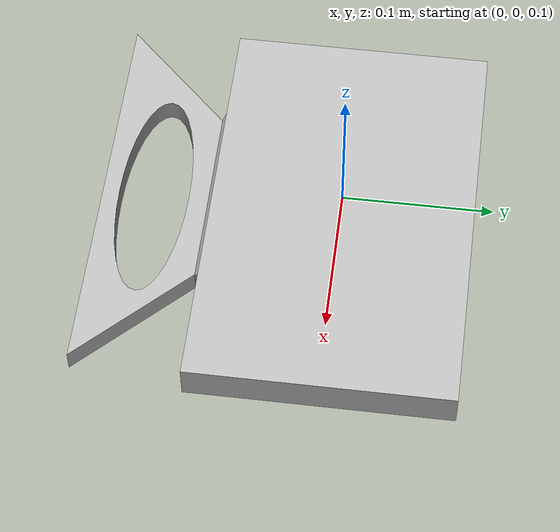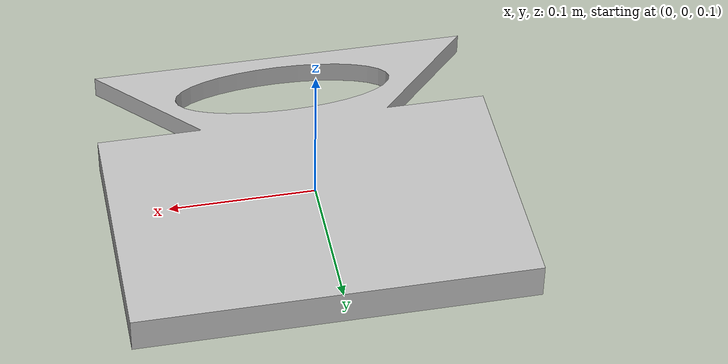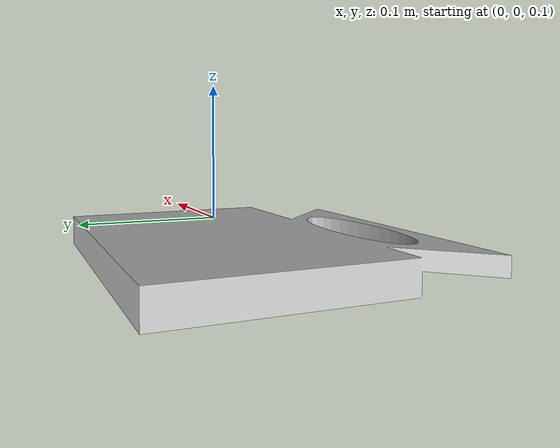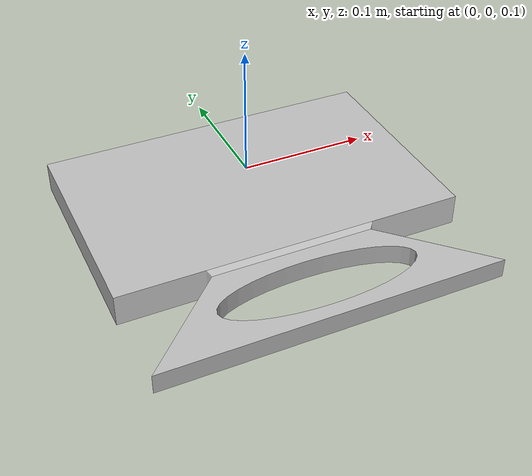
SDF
<?xml version="1.0" ?>
<sdf version="1.5">
  <model name="aruco_block_long">
    <static>false</static>
    <link name="link">
      <inertial>
        <mass>0.049</mass>
        <inertia>
          <ixx>1.45e-4</ixx>
          <ixy>0.0</ixy>
          <ixz>0.0</ixz>
          <iyy>1.45e-4</iyy>
          <iyz>0.0</iyz>
          <izz>1.45e-4</izz>
        </inertia>
      </inertial>
      <collision name="collision">
        <geometry>
          <mesh>
            <scale>0.5 0.5 0.5</scale>
            <uri>model://aruco_block_long/meshes/block_long.dae</uri>
          </mesh>
        </geometry>
        <surface>
          <friction>
            <ode>
              <mu>1.2</mu>
              <mu2>1.2</mu2>
            </ode>
          </friction>
        </surface>
      </collision>
      <visual name="visual">
        <geometry>
          <mesh>
            <scale>0.5 0.5 0.5</scale>
            <uri>model://aruco_block_long/meshes/block_long.dae</uri>
          </mesh>
        </geometry>
      </visual>
    </link>
  </model>
</sdf>
